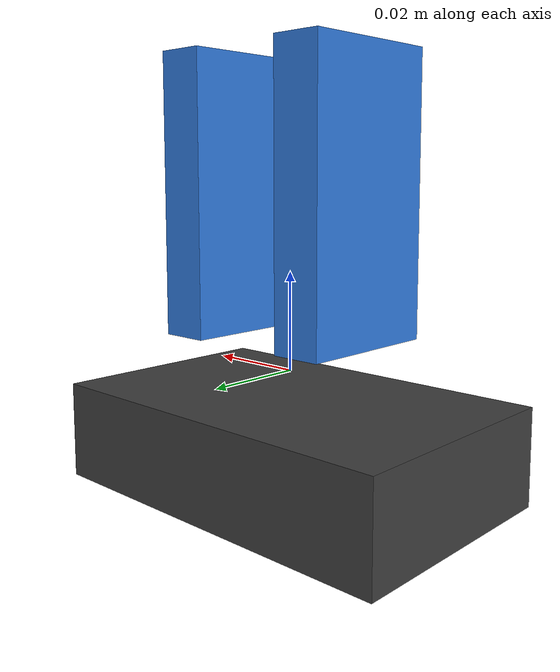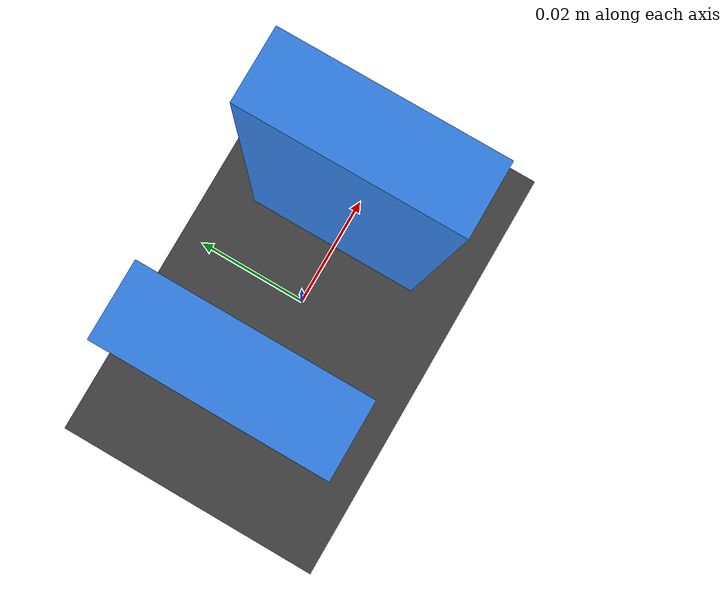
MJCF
<mujoco model="UR5e teaching gripper">
  <compiler angle="radian" autolimits="true"/>
  <option timestep="0.002"/>
  <worldbody>
    <!-- This root body is attached to the UR5e attachment_site by MjSpec. -->
    <body name="gripper_base">
      <geom name="gripper_palm_visual" type="box" size="0.04 0.025 0.01"
            pos="0 0 -0.015" contype="0" conaffinity="0"
            mass="0.10" rgba="0.25 0.25 0.25 1"/>
      <body name="left_finger" pos="-0.015 0 0.035">
        <joint name="left_slide" type="slide" axis="-1 0 0" range="0 0.04" damping="2"/>
        <geom name="left_finger_collision" type="box" size="0.005 0.015 0.028"
              mass="0.10" friction="1 0.005 0.0001" rgba="0.2 0.5 0.9 1"/>
      </body>
      <body name="right_finger" pos="0.015 0 0.035">
        <joint name="right_slide" type="slide" axis="1 0 0" range="0 0.04" damping="2"/>
        <geom name="right_finger_collision" type="box" size="0.005 0.015 0.028"
              mass="0.10" friction="1 0.005 0.0001" rgba="0.2 0.5 0.9 1"/>
      </body>
    </body>
  </worldbody>
  <actuator>
    <!-- Unit transmission: ctrl and slide-joint position target are both meters. -->
    <position name="left_finger_position" joint="left_slide" kp="200"
              ctrlrange="0 0.04" forcerange="-10 10"/>
    <position name="right_finger_position" joint="right_slide" kp="200"
              ctrlrange="0 0.04" forcerange="-10 10"/>
  </actuator>
</mujoco>
